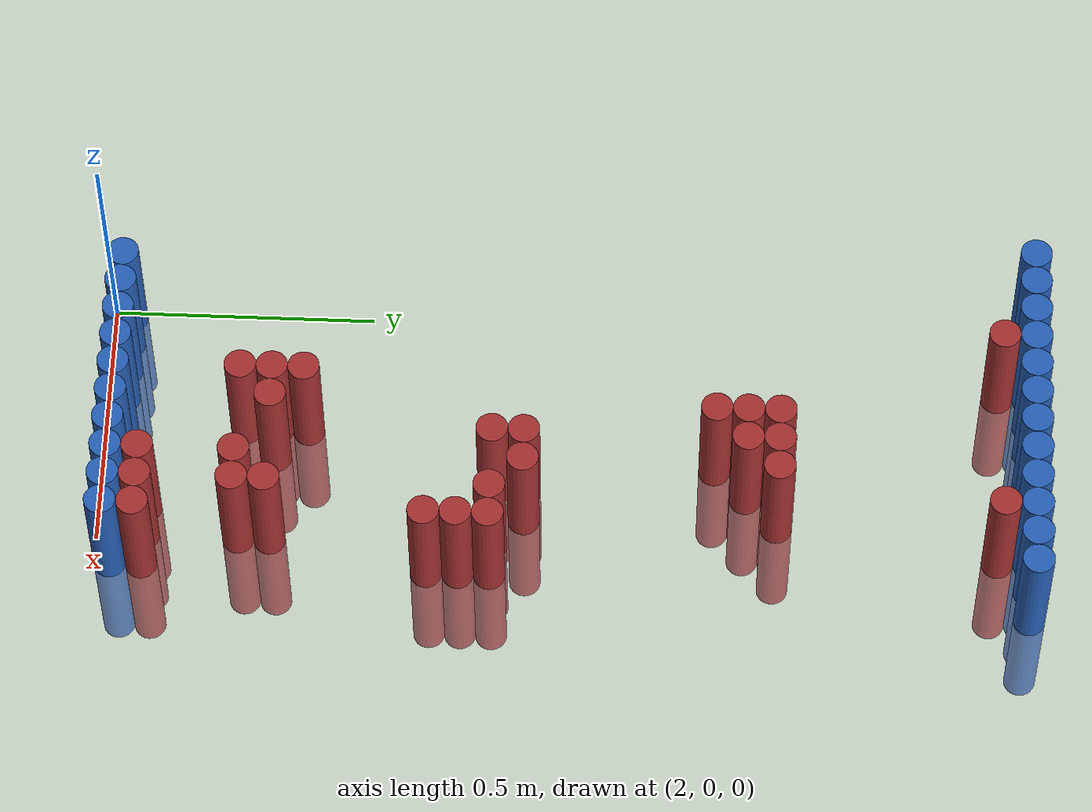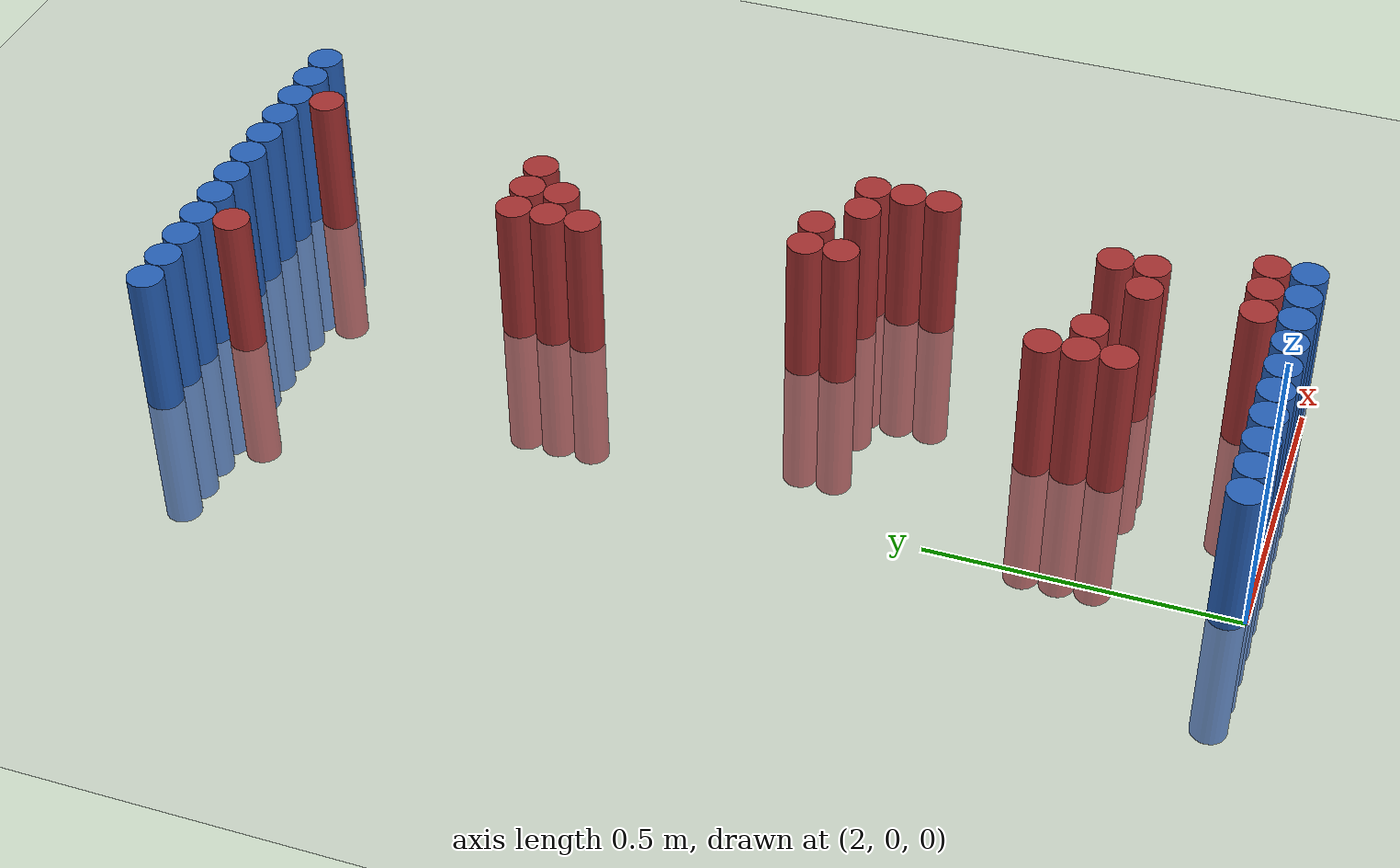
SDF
<sdf version="1.6">
 <world name="default">
  <model name="ground_plane">
   <static>1</static>
   <link name="link">
    <collision name="collision">
     <geometry><plane><normal>0 0 1</normal><size>100 100</size></plane></geometry>
     <surface><friction><ode><mu>100</mu><mu2>50</mu2></ode></friction></surface>
    </collision>
    <visual name="visual">
     <cast_shadows>0</cast_shadows>
     <geometry><plane><normal>0 0 1</normal><size>100 100</size></plane></geometry>
     <material>
      <script><uri>file://media/materials/scripts/gazebo.material</uri><name>Gazebo/Grey</name></script>
     </material>
    </visual>
   </link>
  </model>
  <model name="unit_cylinder_92">
   <static>1</static>
   <pose>1.950000 1.770000 0.000000 0.000000 0.000000 0.000000</pose>
   <link name="link">
    <inertial>
     <mass>1</mass>
     <inertia><ixx>0.145833</ixx><ixy>0</ixy><ixz>0</ixz><iyy>0.145833</iyy><iyz>0</iyz><izz>0.125</izz></inertia>
    </inertial>
    <collision name="collision">
     <geometry><cylinder><radius>0.030000</radius><length>0.5</length></cylinder></geometry>
    </collision>
    <visual name="visual">
     <geometry><cylinder><radius>0.030000</radius><length>0.5</length></cylinder></geometry>
     <material>
      <ambient>0.152000 0.379000 0.720000 1</ambient>
      <diffuse>0.152000 0.379000 0.720000 1</diffuse>
     </material>
     <material>
      <script><name>Gazebo/Grey</name><uri>file://media/materials/scripts/gazebo.material</uri></script>
     </material>
    </visual>
   </link>
  </model>
  <model name="unit_cylinder_93">
   <static>1</static>
   <pose>2.010000 0.030000 0.000000 0.000000 0.000000 0.000000</pose>
   <link name="link">
    <inertial>
     <mass>1</mass>
     <inertia><ixx>0.145833</ixx><ixy>0</ixy><ixz>0</ixz><iyy>0.145833</iyy><iyz>0</iyz><izz>0.125</izz></inertia>
    </inertial>
    <collision name="collision">
     <geometry><cylinder><radius>0.030000</radius><length>0.5</length></cylinder></geometry>
    </collision>
    <visual name="visual">
     <geometry><cylinder><radius>0.030000</radius><length>0.5</length></cylinder></geometry>
     <material>
      <ambient>0.152000 0.379000 0.720000 1</ambient>
      <diffuse>0.152000 0.379000 0.720000 1</diffuse>
     </material>
     <material>
      <script><name>Gazebo/Grey</name><uri>file://media/materials/scripts/gazebo.material</uri></script>
     </material>
    </visual>
   </link>
  </model>
  <model name="unit_cylinder_94">
   <static>1</static>
   <pose>2.010000 1.770000 0.000000 0.000000 0.000000 0.000000</pose>
   <link name="link">
    <inertial>
     <mass>1</mass>
     <inertia><ixx>0.145833</ixx><ixy>0</ixy><ixz>0</ixz><iyy>0.145833</iyy><iyz>0</iyz><izz>0.125</izz></inertia>
    </inertial>
    <collision name="collision">
     <geometry><cylinder><radius>0.030000</radius><length>0.5</length></cylinder></geometry>
    </collision>
    <visual name="visual">
     <geometry><cylinder><radius>0.030000</radius><length>0.5</length></cylinder></geometry>
     <material>
      <ambient>0.152000 0.379000 0.720000 1</ambient>
      <diffuse>0.152000 0.379000 0.720000 1</diffuse>
     </material>
     <material>
      <script><name>Gazebo/Grey</name><uri>file://media/materials/scripts/gazebo.material</uri></script>
     </material>
    </visual>
   </link>
  </model>
  <model name="unit_cylinder_95">
   <static>1</static>
   <pose>2.070000 1.770000 0.000000 0.000000 0.000000 0.000000</pose>
   <link name="link">
    <inertial>
     <mass>1</mass>
     <inertia><ixx>0.145833</ixx><ixy>0</ixy><ixz>0</ixz><iyy>0.145833</iyy><iyz>0</iyz><izz>0.125</izz></inertia>
    </inertial>
    <collision name="collision">
     <geometry><cylinder><radius>0.030000</radius><length>0.5</length></cylinder></geometry>
    </collision>
    <visual name="visual">
     <geometry><cylinder><radius>0.030000</radius><length>0.5</length></cylinder></geometry>
     <material>
      <ambient>0.152000 0.379000 0.720000 1</ambient>
      <diffuse>0.152000 0.379000 0.720000 1</diffuse>
     </material>
     <material>
      <script><name>Gazebo/Grey</name><uri>file://media/materials/scripts/gazebo.material</uri></script>
     </material>
    </visual>
   </link>
  </model>
  <model name="unit_cylinder_96">
   <static>1</static>
   <pose>2.130000 1.770000 0.000000 0.000000 0.000000 0.000000</pose>
   <link name="link">
    <inertial>
     <mass>1</mass>
     <inertia><ixx>0.145833</ixx><ixy>0</ixy><ixz>0</ixz><iyy>0.145833</iyy><iyz>0</iyz><izz>0.125</izz></inertia>
    </inertial>
    <collision name="collision">
     <geometry><cylinder><radius>0.030000</radius><length>0.5</length></cylinder></geometry>
    </collision>
    <visual name="visual">
     <geometry><cylinder><radius>0.030000</radius><length>0.5</length></cylinder></geometry>
     <material>
      <ambient>0.152000 0.379000 0.720000 1</ambient>
      <diffuse>0.152000 0.379000 0.720000 1</diffuse>
     </material>
     <material>
      <script><name>Gazebo/Grey</name><uri>file://media/materials/scripts/gazebo.material</uri></script>
     </material>
    </visual>
   </link>
  </model>
  <model name="unit_cylinder_97">
   <static>1</static>
   <pose>2.190000 1.770000 0.000000 0.000000 0.000000 0.000000</pose>
   <link name="link">
    <inertial>
     <mass>1</mass>
     <inertia><ixx>0.145833</ixx><ixy>0</ixy><ixz>0</ixz><iyy>0.145833</iyy><iyz>0</iyz><izz>0.125</izz></inertia>
    </inertial>
    <collision name="collision">
     <geometry><cylinder><radius>0.030000</radius><length>0.5</length></cylinder></geometry>
    </collision>
    <visual name="visual">
     <geometry><cylinder><radius>0.030000</radius><length>0.5</length></cylinder></geometry>
     <material>
      <ambient>0.152000 0.379000 0.720000 1</ambient>
      <diffuse>0.152000 0.379000 0.720000 1</diffuse>
     </material>
     <material>
      <script><name>Gazebo/Grey</name><uri>file://media/materials/scripts/gazebo.material</uri></script>
     </material>
    </visual>
   </link>
  </model>
  <model name="unit_cylinder_98">
   <static>1</static>
   <pose>2.250000 1.770000 0.000000 0.000000 0.000000 0.000000</pose>
   <link name="link">
    <inertial>
     <mass>1</mass>
     <inertia><ixx>0.145833</ixx><ixy>0</ixy><ixz>0</ixz><iyy>0.145833</iyy><iyz>0</iyz><izz>0.125</izz></inertia>
    </inertial>
    <collision name="collision">
     <geometry><cylinder><radius>0.030000</radius><length>0.5</length></cylinder></geometry>
    </collision>
    <visual name="visual">
     <geometry><cylinder><radius>0.030000</radius><length>0.5</length></cylinder></geometry>
     <material>
      <ambient>0.152000 0.379000 0.720000 1</ambient>
      <diffuse>0.152000 0.379000 0.720000 1</diffuse>
     </material>
     <material>
      <script><name>Gazebo/Grey</name><uri>file://media/materials/scripts/gazebo.material</uri></script>
     </material>
    </visual>
   </link>
  </model>
  <model name="unit_cylinder_99">
   <static>1</static>
   <pose>2.310000 1.770000 0.000000 0.000000 0.000000 0.000000</pose>
   <link name="link">
    <inertial>
     <mass>1</mass>
     <inertia><ixx>0.145833</ixx><ixy>0</ixy><ixz>0</ixz><iyy>0.145833</iyy><iyz>0</iyz><izz>0.125</izz></inertia>
    </inertial>
    <collision name="collision">
     <geometry><cylinder><radius>0.030000</radius><length>0.5</length></cylinder></geometry>
    </collision>
    <visual name="visual">
     <geometry><cylinder><radius>0.030000</radius><length>0.5</length></cylinder></geometry>
     <material>
      <ambient>0.152000 0.379000 0.720000 1</ambient>
      <diffuse>0.152000 0.379000 0.720000 1</diffuse>
     </material>
     <material>
      <script><name>Gazebo/Grey</name><uri>file://media/materials/scripts/gazebo.material</uri></script>
     </material>
    </visual>
   </link>
  </model>
  <model name="unit_cylinder_100">
   <static>1</static>
   <pose>2.370000 1.770000 0.000000 0.000000 0.000000 0.000000</pose>
   <link name="link">
    <inertial>
     <mass>1</mass>
     <inertia><ixx>0.145833</ixx><ixy>0</ixy><ixz>0</ixz><iyy>0.145833</iyy><iyz>0</iyz><izz>0.125</izz></inertia>
    </inertial>
    <collision name="collision">
     <geometry><cylinder><radius>0.030000</radius><length>0.5</length></cylinder></geometry>
    </collision>
    <visual name="visual">
     <geometry><cylinder><radius>0.030000</radius><length>0.5</length></cylinder></geometry>
     <material>
      <ambient>0.152000 0.379000 0.720000 1</ambient>
      <diffuse>0.152000 0.379000 0.720000 1</diffuse>
     </material>
     <material>
      <script><name>Gazebo/Grey</name><uri>file://media/materials/scripts/gazebo.material</uri></script>
     </material>
    </visual>
   </link>
  </model>
  <model name="unit_cylinder_101">
   <static>1</static>
   <pose>2.430000 1.770000 0.000000 0.000000 0.000000 0.000000</pose>
   <link name="link">
    <inertial>
     <mass>1</mass>
     <inertia><ixx>0.145833</ixx><ixy>0</ixy><ixz>0</ixz><iyy>0.145833</iyy><iyz>0</iyz><izz>0.125</izz></inertia>
    </inertial>
    <collision name="collision">
     <geometry><cylinder><radius>0.030000</radius><length>0.5</length></cylinder></geometry>
    </collision>
    <visual name="visual">
     <geometry><cylinder><radius>0.030000</radius><length>0.5</length></cylinder></geometry>
     <material>
      <ambient>0.152000 0.379000 0.720000 1</ambient>
      <diffuse>0.152000 0.379000 0.720000 1</diffuse>
     </material>
     <material>
      <script><name>Gazebo/Grey</name><uri>file://media/materials/scripts/gazebo.material</uri></script>
     </material>
    </visual>
   </link>
  </model>
  <model name="unit_cylinder_102">
   <static>1</static>
   <pose>2.490000 1.770000 0.000000 0.000000 0.000000 0.000000</pose>
   <link name="link">
    <inertial>
     <mass>1</mass>
     <inertia><ixx>0.145833</ixx><ixy>0</ixy><ixz>0</ixz><iyy>0.145833</iyy><iyz>0</iyz><izz>0.125</izz></inertia>
    </inertial>
    <collision name="collision">
     <geometry><cylinder><radius>0.030000</radius><length>0.5</length></cylinder></geometry>
    </collision>
    <visual name="visual">
     <geometry><cylinder><radius>0.030000</radius><length>0.5</length></cylinder></geometry>
     <material>
      <ambient>0.152000 0.379000 0.720000 1</ambient>
      <diffuse>0.152000 0.379000 0.720000 1</diffuse>
     </material>
     <material>
      <script><name>Gazebo/Grey</name><uri>file://media/materials/scripts/gazebo.material</uri></script>
     </material>
    </visual>
   </link>
  </model>
  <model name="unit_cylinder_103">
   <static>1</static>
   <pose>2.550000 1.770000 0.000000 0.000000 0.000000 0.000000</pose>
   <link name="link">
    <inertial>
     <mass>1</mass>
     <inertia><ixx>0.145833</ixx><ixy>0</ixy><ixz>0</ixz><iyy>0.145833</iyy><iyz>0</iyz><izz>0.125</izz></inertia>
    </inertial>
    <collision name="collision">
     <geometry><cylinder><radius>0.030000</radius><length>0.5</length></cylinder></geometry>
    </collision>
    <visual name="visual">
     <geometry><cylinder><radius>0.030000</radius><length>0.5</length></cylinder></geometry>
     <material>
      <ambient>0.152000 0.379000 0.720000 1</ambient>
      <diffuse>0.152000 0.379000 0.720000 1</diffuse>
     </material>
     <material>
      <script><name>Gazebo/Grey</name><uri>file://media/materials/scripts/gazebo.material</uri></script>
     </material>
    </visual>
   </link>
  </model>
  <model name="unit_cylinder_104">
   <static>1</static>
   <pose>2.610000 1.770000 0.000000 0.000000 0.000000 0.000000</pose>
   <link name="link">
    <inertial>
     <mass>1</mass>
     <inertia><ixx>0.145833</ixx><ixy>0</ixy><ixz>0</ixz><iyy>0.145833</iyy><iyz>0</iyz><izz>0.125</izz></inertia>
    </inertial>
    <collision name="collision">
     <geometry><cylinder><radius>0.030000</radius><length>0.5</length></cylinder></geometry>
    </collision>
    <visual name="visual">
     <geometry><cylinder><radius>0.030000</radius><length>0.5</length></cylinder></geometry>
     <material>
      <ambient>0.152000 0.379000 0.720000 1</ambient>
      <diffuse>0.152000 0.379000 0.720000 1</diffuse>
     </material>
     <material>
      <script><name>Gazebo/Grey</name><uri>file://media/materials/scripts/gazebo.material</uri></script>
     </material>
    </visual>
   </link>
  </model>
  <model name="unit_cylinder_125">
   <static>1</static>
   <pose>2.130000 1.710000 0.000000 0.000000 0.000000 0.000000</pose>
   <link name="link">
    <inertial>
     <mass>1</mass>
     <inertia><ixx>0.145833</ixx><ixy>0</ixy><ixz>0</ixz><iyy>0.145833</iyy><iyz>0</iyz><izz>0.125</izz></inertia>
    </inertial>
    <collision name="collision">
     <geometry><cylinder><radius>0.030000</radius><length>0.5</length></cylinder></geometry>
    </collision>
    <visual name="visual">
     <geometry><cylinder><radius>0.030000</radius><length>0.5</length></cylinder></geometry>
     <material>
      <ambient>0.648000 0.192000 0.192000 1</ambient>
      <diffuse>0.648000 0.192000 0.192000 1</diffuse>
     </material>
     <material>
      <script><name>Gazebo/Grey</name><uri>file://media/materials/scripts/gazebo.material</uri></script>
     </material>
    </visual>
   </link>
  </model>
  <model name="unit_cylinder_126">
   <static>1</static>
   <pose>2.490000 1.710000 0.000000 0.000000 0.000000 0.000000</pose>
   <link name="link">
    <inertial>
     <mass>1</mass>
     <inertia><ixx>0.145833</ixx><ixy>0</ixy><ixz>0</ixz><iyy>0.145833</iyy><iyz>0</iyz><izz>0.125</izz></inertia>
    </inertial>
    <collision name="collision">
     <geometry><cylinder><radius>0.030000</radius><length>0.5</length></cylinder></geometry>
    </collision>
    <visual name="visual">
     <geometry><cylinder><radius>0.030000</radius><length>0.5</length></cylinder></geometry>
     <material>
      <ambient>0.648000 0.192000 0.192000 1</ambient>
      <diffuse>0.648000 0.192000 0.192000 1</diffuse>
     </material>
     <material>
      <script><name>Gazebo/Grey</name><uri>file://media/materials/scripts/gazebo.material</uri></script>
     </material>
    </visual>
   </link>
  </model>
  <model name="unit_cylinder_148">
   <static>1</static>
   <pose>2.310000 1.290000 0.000000 0.000000 0.000000 0.000000</pose>
   <link name="link">
    <inertial>
     <mass>1</mass>
     <inertia><ixx>0.145833</ixx><ixy>0</ixy><ixz>0</ixz><iyy>0.145833</iyy><iyz>0</iyz><izz>0.125</izz></inertia>
    </inertial>
    <collision name="collision">
     <geometry><cylinder><radius>0.030000</radius><length>0.5</length></cylinder></geometry>
    </collision>
    <visual name="visual">
     <geometry><cylinder><radius>0.030000</radius><length>0.5</length></cylinder></geometry>
     <material>
      <ambient>0.648000 0.192000 0.192000 1</ambient>
      <diffuse>0.648000 0.192000 0.192000 1</diffuse>
     </material>
     <material>
      <script><name>Gazebo/Grey</name><uri>file://media/materials/scripts/gazebo.material</uri></script>
     </material>
    </visual>
   </link>
  </model>
  <model name="unit_cylinder_149">
   <static>1</static>
   <pose>2.370000 1.290000 0.000000 0.000000 0.000000 0.000000</pose>
   <link name="link">
    <inertial>
     <mass>1</mass>
     <inertia><ixx>0.145833</ixx><ixy>0</ixy><ixz>0</ixz><iyy>0.145833</iyy><iyz>0</iyz><izz>0.125</izz></inertia>
    </inertial>
    <collision name="collision">
     <geometry><cylinder><radius>0.030000</radius><length>0.5</length></cylinder></geometry>
    </collision>
    <visual name="visual">
     <geometry><cylinder><radius>0.030000</radius><length>0.5</length></cylinder></geometry>
     <material>
      <ambient>0.648000 0.192000 0.192000 1</ambient>
      <diffuse>0.648000 0.192000 0.192000 1</diffuse>
     </material>
     <material>
      <script><name>Gazebo/Grey</name><uri>file://media/materials/scripts/gazebo.material</uri></script>
     </material>
    </visual>
   </link>
  </model>
  <model name="unit_cylinder_150">
   <static>1</static>
   <pose>2.430000 1.290000 0.000000 0.000000 0.000000 0.000000</pose>
   <link name="link">
    <inertial>
     <mass>1</mass>
     <inertia><ixx>0.145833</ixx><ixy>0</ixy><ixz>0</ixz><iyy>0.145833</iyy><iyz>0</iyz><izz>0.125</izz></inertia>
    </inertial>
    <collision name="collision">
     <geometry><cylinder><radius>0.030000</radius><length>0.5</length></cylinder></geometry>
    </collision>
    <visual name="visual">
     <geometry><cylinder><radius>0.030000</radius><length>0.5</length></cylinder></geometry>
     <material>
      <ambient>0.648000 0.192000 0.192000 1</ambient>
      <diffuse>0.648000 0.192000 0.192000 1</diffuse>
     </material>
     <material>
      <script><name>Gazebo/Grey</name><uri>file://media/materials/scripts/gazebo.material</uri></script>
     </material>
    </visual>
   </link>
  </model>
  <model name="unit_cylinder_151">
   <static>1</static>
   <pose>2.310000 1.230000 0.000000 0.000000 0.000000 0.000000</pose>
   <link name="link">
    <inertial>
     <mass>1</mass>
     <inertia><ixx>0.145833</ixx><ixy>0</ixy><ixz>0</ixz><iyy>0.145833</iyy><iyz>0</iyz><izz>0.125</izz></inertia>
    </inertial>
    <collision name="collision">
     <geometry><cylinder><radius>0.030000</radius><length>0.5</length></cylinder></geometry>
    </collision>
    <visual name="visual">
     <geometry><cylinder><radius>0.030000</radius><length>0.5</length></cylinder></geometry>
     <material>
      <ambient>0.648000 0.192000 0.192000 1</ambient>
      <diffuse>0.648000 0.192000 0.192000 1</diffuse>
     </material>
     <material>
      <script><name>Gazebo/Grey</name><uri>file://media/materials/scripts/gazebo.material</uri></script>
     </material>
    </visual>
   </link>
  </model>
  <model name="unit_cylinder_152">
   <static>1</static>
   <pose>2.370000 1.230000 0.000000 0.000000 0.000000 0.000000</pose>
   <link name="link">
    <inertial>
     <mass>1</mass>
     <inertia><ixx>0.145833</ixx><ixy>0</ixy><ixz>0</ixz><iyy>0.145833</iyy><iyz>0</iyz><izz>0.125</izz></inertia>
    </inertial>
    <collision name="collision">
     <geometry><cylinder><radius>0.030000</radius><length>0.5</length></cylinder></geometry>
    </collision>
    <visual name="visual">
     <geometry><cylinder><radius>0.030000</radius><length>0.5</length></cylinder></geometry>
     <material>
      <ambient>0.648000 0.192000 0.192000 1</ambient>
      <diffuse>0.648000 0.192000 0.192000 1</diffuse>
     </material>
     <material>
      <script><name>Gazebo/Grey</name><uri>file://media/materials/scripts/gazebo.material</uri></script>
     </material>
    </visual>
   </link>
  </model>
  <model name="unit_cylinder_154">
   <static>1</static>
   <pose>2.310000 1.170000 0.000000 0.000000 0.000000 0.000000</pose>
   <link name="link">
    <inertial>
     <mass>1</mass>
     <inertia><ixx>0.145833</ixx><ixy>0</ixy><ixz>0</ixz><iyy>0.145833</iyy><iyz>0</iyz><izz>0.125</izz></inertia>
    </inertial>
    <collision name="collision">
     <geometry><cylinder><radius>0.030000</radius><length>0.5</length></cylinder></geometry>
    </collision>
    <visual name="visual">
     <geometry><cylinder><radius>0.030000</radius><length>0.5</length></cylinder></geometry>
     <material>
      <ambient>0.648000 0.192000 0.192000 1</ambient>
      <diffuse>0.648000 0.192000 0.192000 1</diffuse>
     </material>
     <material>
      <script><name>Gazebo/Grey</name><uri>file://media/materials/scripts/gazebo.material</uri></script>
     </material>
    </visual>
   </link>
  </model>
  <model name="unit_cylinder_179">
   <static>1</static>
   <pose>2.370000 0.810000 0.000000 0.000000 0.000000 0.000000</pose>
   <link name="link">
    <inertial>
     <mass>1</mass>
     <inertia><ixx>0.145833</ixx><ixy>0</ixy><ixz>0</ixz><iyy>0.145833</iyy><iyz>0</iyz><izz>0.125</izz></inertia>
    </inertial>
    <collision name="collision">
     <geometry><cylinder><radius>0.030000</radius><length>0.5</length></cylinder></geometry>
    </collision>
    <visual name="visual">
     <geometry><cylinder><radius>0.030000</radius><length>0.5</length></cylinder></geometry>
     <material>
      <ambient>0.648000 0.192000 0.192000 1</ambient>
      <diffuse>0.648000 0.192000 0.192000 1</diffuse>
     </material>
     <material>
      <script><name>Gazebo/Grey</name><uri>file://media/materials/scripts/gazebo.material</uri></script>
     </material>
    </visual>
   </link>
  </model>
  <model name="unit_cylinder_180">
   <static>1</static>
   <pose>2.430000 0.810000 0.000000 0.000000 0.000000 0.000000</pose>
   <link name="link">
    <inertial>
     <mass>1</mass>
     <inertia><ixx>0.145833</ixx><ixy>0</ixy><ixz>0</ixz><iyy>0.145833</iyy><iyz>0</iyz><izz>0.125</izz></inertia>
    </inertial>
    <collision name="collision">
     <geometry><cylinder><radius>0.030000</radius><length>0.5</length></cylinder></geometry>
    </collision>
    <visual name="visual">
     <geometry><cylinder><radius>0.030000</radius><length>0.5</length></cylinder></geometry>
     <material>
      <ambient>0.648000 0.192000 0.192000 1</ambient>
      <diffuse>0.648000 0.192000 0.192000 1</diffuse>
     </material>
     <material>
      <script><name>Gazebo/Grey</name><uri>file://media/materials/scripts/gazebo.material</uri></script>
     </material>
    </visual>
   </link>
  </model>
  <model name="unit_cylinder_181">
   <static>1</static>
   <pose>2.370000 0.750000 0.000000 0.000000 0.000000 0.000000</pose>
   <link name="link">
    <inertial>
     <mass>1</mass>
     <inertia><ixx>0.145833</ixx><ixy>0</ixy><ixz>0</ixz><iyy>0.145833</iyy><iyz>0</iyz><izz>0.125</izz></inertia>
    </inertial>
    <collision name="collision">
     <geometry><cylinder><radius>0.030000</radius><length>0.5</length></cylinder></geometry>
    </collision>
    <visual name="visual">
     <geometry><cylinder><radius>0.030000</radius><length>0.5</length></cylinder></geometry>
     <material>
      <ambient>0.648000 0.192000 0.192000 1</ambient>
      <diffuse>0.648000 0.192000 0.192000 1</diffuse>
     </material>
     <material>
      <script><name>Gazebo/Grey</name><uri>file://media/materials/scripts/gazebo.material</uri></script>
     </material>
    </visual>
   </link>
  </model>
  <model name="unit_cylinder_182">
   <static>1</static>
   <pose>2.490000 0.750000 0.000000 0.000000 0.000000 0.000000</pose>
   <link name="link">
    <inertial>
     <mass>1</mass>
     <inertia><ixx>0.145833</ixx><ixy>0</ixy><ixz>0</ixz><iyy>0.145833</iyy><iyz>0</iyz><izz>0.125</izz></inertia>
    </inertial>
    <collision name="collision">
     <geometry><cylinder><radius>0.030000</radius><length>0.5</length></cylinder></geometry>
    </collision>
    <visual name="visual">
     <geometry><cylinder><radius>0.030000</radius><length>0.5</length></cylinder></geometry>
     <material>
      <ambient>0.648000 0.192000 0.192000 1</ambient>
      <diffuse>0.648000 0.192000 0.192000 1</diffuse>
     </material>
     <material>
      <script><name>Gazebo/Grey</name><uri>file://media/materials/scripts/gazebo.material</uri></script>
     </material>
    </visual>
   </link>
  </model>
  <model name="unit_cylinder_183">
   <static>1</static>
   <pose>2.550000 0.750000 0.000000 0.000000 0.000000 0.000000</pose>
   <link name="link">
    <inertial>
     <mass>1</mass>
     <inertia><ixx>0.145833</ixx><ixy>0</ixy><ixz>0</ixz><iyy>0.145833</iyy><iyz>0</iyz><izz>0.125</izz></inertia>
    </inertial>
    <collision name="collision">
     <geometry><cylinder><radius>0.030000</radius><length>0.5</length></cylinder></geometry>
    </collision>
    <visual name="visual">
     <geometry><cylinder><radius>0.030000</radius><length>0.5</length></cylinder></geometry>
     <material>
      <ambient>0.648000 0.192000 0.192000 1</ambient>
      <diffuse>0.648000 0.192000 0.192000 1</diffuse>
     </material>
     <material>
      <script><name>Gazebo/Grey</name><uri>file://media/materials/scripts/gazebo.material</uri></script>
     </material>
    </visual>
   </link>
  </model>
  <model name="unit_cylinder_188">
   <static>1</static>
   <pose>2.550000 0.690000 0.000000 0.000000 0.000000 0.000000</pose>
   <link name="link">
    <inertial>
     <mass>1</mass>
     <inertia><ixx>0.145833</ixx><ixy>0</ixy><ixz>0</ixz><iyy>0.145833</iyy><iyz>0</iyz><izz>0.125</izz></inertia>
    </inertial>
    <collision name="collision">
     <geometry><cylinder><radius>0.030000</radius><length>0.5</length></cylinder></geometry>
    </collision>
    <visual name="visual">
     <geometry><cylinder><radius>0.030000</radius><length>0.5</length></cylinder></geometry>
     <material>
      <ambient>0.648000 0.192000 0.192000 1</ambient>
      <diffuse>0.648000 0.192000 0.192000 1</diffuse>
     </material>
     <material>
      <script><name>Gazebo/Grey</name><uri>file://media/materials/scripts/gazebo.material</uri></script>
     </material>
    </visual>
   </link>
  </model>
  <model name="unit_cylinder_195">
   <static>1</static>
   <pose>2.550000 0.630000 0.000000 0.000000 0.000000 0.000000</pose>
   <link name="link">
    <inertial>
     <mass>1</mass>
     <inertia><ixx>0.145833</ixx><ixy>0</ixy><ixz>0</ixz><iyy>0.145833</iyy><iyz>0</iyz><izz>0.125</izz></inertia>
    </inertial>
    <collision name="collision">
     <geometry><cylinder><radius>0.030000</radius><length>0.5</length></cylinder></geometry>
    </collision>
    <visual name="visual">
     <geometry><cylinder><radius>0.030000</radius><length>0.5</length></cylinder></geometry>
     <material>
      <ambient>0.648000 0.192000 0.192000 1</ambient>
      <diffuse>0.648000 0.192000 0.192000 1</diffuse>
     </material>
     <material>
      <script><name>Gazebo/Grey</name><uri>file://media/materials/scripts/gazebo.material</uri></script>
     </material>
    </visual>
   </link>
  </model>
  <model name="unit_cylinder_208">
   <static>1</static>
   <pose>2.250000 0.390000 0.000000 0.000000 0.000000 0.000000</pose>
   <link name="link">
    <inertial>
     <mass>1</mass>
     <inertia><ixx>0.145833</ixx><ixy>0</ixy><ixz>0</ixz><iyy>0.145833</iyy><iyz>0</iyz><izz>0.125</izz></inertia>
    </inertial>
    <collision name="collision">
     <geometry><cylinder><radius>0.030000</radius><length>0.5</length></cylinder></geometry>
    </collision>
    <visual name="visual">
     <geometry><cylinder><radius>0.030000</radius><length>0.5</length></cylinder></geometry>
     <material>
      <ambient>0.648000 0.192000 0.192000 1</ambient>
      <diffuse>0.648000 0.192000 0.192000 1</diffuse>
     </material>
     <material>
      <script><name>Gazebo/Grey</name><uri>file://media/materials/scripts/gazebo.material</uri></script>
     </material>
    </visual>
   </link>
  </model>
  <model name="unit_cylinder_212">
   <static>1</static>
   <pose>2.250000 0.330000 0.000000 0.000000 0.000000 0.000000</pose>
   <link name="link">
    <inertial>
     <mass>1</mass>
     <inertia><ixx>0.145833</ixx><ixy>0</ixy><ixz>0</ixz><iyy>0.145833</iyy><iyz>0</iyz><izz>0.125</izz></inertia>
    </inertial>
    <collision name="collision">
     <geometry><cylinder><radius>0.030000</radius><length>0.5</length></cylinder></geometry>
    </collision>
    <visual name="visual">
     <geometry><cylinder><radius>0.030000</radius><length>0.5</length></cylinder></geometry>
     <material>
      <ambient>0.648000 0.192000 0.192000 1</ambient>
      <diffuse>0.648000 0.192000 0.192000 1</diffuse>
     </material>
     <material>
      <script><name>Gazebo/Grey</name><uri>file://media/materials/scripts/gazebo.material</uri></script>
     </material>
    </visual>
   </link>
  </model>
  <model name="unit_cylinder_213">
   <static>1</static>
   <pose>2.310000 0.330000 0.000000 0.000000 0.000000 0.000000</pose>
   <link name="link">
    <inertial>
     <mass>1</mass>
     <inertia><ixx>0.145833</ixx><ixy>0</ixy><ixz>0</ixz><iyy>0.145833</iyy><iyz>0</iyz><izz>0.125</izz></inertia>
    </inertial>
    <collision name="collision">
     <geometry><cylinder><radius>0.030000</radius><length>0.5</length></cylinder></geometry>
    </collision>
    <visual name="visual">
     <geometry><cylinder><radius>0.030000</radius><length>0.5</length></cylinder></geometry>
     <material>
      <ambient>0.648000 0.192000 0.192000 1</ambient>
      <diffuse>0.648000 0.192000 0.192000 1</diffuse>
     </material>
     <material>
      <script><name>Gazebo/Grey</name><uri>file://media/materials/scripts/gazebo.material</uri></script>
     </material>
    </visual>
   </link>
  </model>
  <model name="unit_cylinder_214">
   <static>1</static>
   <pose>2.490000 0.330000 0.000000 0.000000 0.000000 0.000000</pose>
   <link name="link">
    <inertial>
     <mass>1</mass>
     <inertia><ixx>0.145833</ixx><ixy>0</ixy><ixz>0</ixz><iyy>0.145833</iyy><iyz>0</iyz><izz>0.125</izz></inertia>
    </inertial>
    <collision name="collision">
     <geometry><cylinder><radius>0.030000</radius><length>0.5</length></cylinder></geometry>
    </collision>
    <visual name="visual">
     <geometry><cylinder><radius>0.030000</radius><length>0.5</length></cylinder></geometry>
     <material>
      <ambient>0.648000 0.192000 0.192000 1</ambient>
      <diffuse>0.648000 0.192000 0.192000 1</diffuse>
     </material>
     <material>
      <script><name>Gazebo/Grey</name><uri>file://media/materials/scripts/gazebo.material</uri></script>
     </material>
    </visual>
   </link>
  </model>
  <model name="unit_cylinder_217">
   <static>1</static>
   <pose>2.250000 0.270000 0.000000 0.000000 0.000000 0.000000</pose>
   <link name="link">
    <inertial>
     <mass>1</mass>
     <inertia><ixx>0.145833</ixx><ixy>0</ixy><ixz>0</ixz><iyy>0.145833</iyy><iyz>0</iyz><izz>0.125</izz></inertia>
    </inertial>
    <collision name="collision">
     <geometry><cylinder><radius>0.030000</radius><length>0.5</length></cylinder></geometry>
    </collision>
    <visual name="visual">
     <geometry><cylinder><radius>0.030000</radius><length>0.5</length></cylinder></geometry>
     <material>
      <ambient>0.648000 0.192000 0.192000 1</ambient>
      <diffuse>0.648000 0.192000 0.192000 1</diffuse>
     </material>
     <material>
      <script><name>Gazebo/Grey</name><uri>file://media/materials/scripts/gazebo.material</uri></script>
     </material>
    </visual>
   </link>
  </model>
  <model name="unit_cylinder_218">
   <static>1</static>
   <pose>2.430000 0.270000 0.000000 0.000000 0.000000 0.000000</pose>
   <link name="link">
    <inertial>
     <mass>1</mass>
     <inertia><ixx>0.145833</ixx><ixy>0</ixy><ixz>0</ixz><iyy>0.145833</iyy><iyz>0</iyz><izz>0.125</izz></inertia>
    </inertial>
    <collision name="collision">
     <geometry><cylinder><radius>0.030000</radius><length>0.5</length></cylinder></geometry>
    </collision>
    <visual name="visual">
     <geometry><cylinder><radius>0.030000</radius><length>0.5</length></cylinder></geometry>
     <material>
      <ambient>0.648000 0.192000 0.192000 1</ambient>
      <diffuse>0.648000 0.192000 0.192000 1</diffuse>
     </material>
     <material>
      <script><name>Gazebo/Grey</name><uri>file://media/materials/scripts/gazebo.material</uri></script>
     </material>
    </visual>
   </link>
  </model>
  <model name="unit_cylinder_219">
   <static>1</static>
   <pose>2.490000 0.270000 0.000000 0.000000 0.000000 0.000000</pose>
   <link name="link">
    <inertial>
     <mass>1</mass>
     <inertia><ixx>0.145833</ixx><ixy>0</ixy><ixz>0</ixz><iyy>0.145833</iyy><iyz>0</iyz><izz>0.125</izz></inertia>
    </inertial>
    <collision name="collision">
     <geometry><cylinder><radius>0.030000</radius><length>0.5</length></cylinder></geometry>
    </collision>
    <visual name="visual">
     <geometry><cylinder><radius>0.030000</radius><length>0.5</length></cylinder></geometry>
     <material>
      <ambient>0.648000 0.192000 0.192000 1</ambient>
      <diffuse>0.648000 0.192000 0.192000 1</diffuse>
     </material>
     <material>
      <script><name>Gazebo/Grey</name><uri>file://media/materials/scripts/gazebo.material</uri></script>
     </material>
    </visual>
   </link>
  </model>
  <model name="unit_cylinder_236">
   <static>1</static>
   <pose>2.430000 0.090000 0.000000 0.000000 0.000000 0.000000</pose>
   <link name="link">
    <inertial>
     <mass>1</mass>
     <inertia><ixx>0.145833</ixx><ixy>0</ixy><ixz>0</ixz><iyy>0.145833</iyy><iyz>0</iyz><izz>0.125</izz></inertia>
    </inertial>
    <collision name="collision">
     <geometry><cylinder><radius>0.030000</radius><length>0.5</length></cylinder></geometry>
    </collision>
    <visual name="visual">
     <geometry><cylinder><radius>0.030000</radius><length>0.5</length></cylinder></geometry>
     <material>
      <ambient>0.648000 0.192000 0.192000 1</ambient>
      <diffuse>0.648000 0.192000 0.192000 1</diffuse>
     </material>
     <material>
      <script><name>Gazebo/Grey</name><uri>file://media/materials/scripts/gazebo.material</uri></script>
     </material>
    </visual>
   </link>
  </model>
  <model name="unit_cylinder_237">
   <static>1</static>
   <pose>2.490000 0.090000 0.000000 0.000000 0.000000 0.000000</pose>
   <link name="link">
    <inertial>
     <mass>1</mass>
     <inertia><ixx>0.145833</ixx><ixy>0</ixy><ixz>0</ixz><iyy>0.145833</iyy><iyz>0</iyz><izz>0.125</izz></inertia>
    </inertial>
    <collision name="collision">
     <geometry><cylinder><radius>0.030000</radius><length>0.5</length></cylinder></geometry>
    </collision>
    <visual name="visual">
     <geometry><cylinder><radius>0.030000</radius><length>0.5</length></cylinder></geometry>
     <material>
      <ambient>0.648000 0.192000 0.192000 1</ambient>
      <diffuse>0.648000 0.192000 0.192000 1</diffuse>
     </material>
     <material>
      <script><name>Gazebo/Grey</name><uri>file://media/materials/scripts/gazebo.material</uri></script>
     </material>
    </visual>
   </link>
  </model>
  <model name="unit_cylinder_238">
   <static>1</static>
   <pose>2.550000 0.090000 0.000000 0.000000 0.000000 0.000000</pose>
   <link name="link">
    <inertial>
     <mass>1</mass>
     <inertia><ixx>0.145833</ixx><ixy>0</ixy><ixz>0</ixz><iyy>0.145833</iyy><iyz>0</iyz><izz>0.125</izz></inertia>
    </inertial>
    <collision name="collision">
     <geometry><cylinder><radius>0.030000</radius><length>0.5</length></cylinder></geometry>
    </collision>
    <visual name="visual">
     <geometry><cylinder><radius>0.030000</radius><length>0.5</length></cylinder></geometry>
     <material>
      <ambient>0.648000 0.192000 0.192000 1</ambient>
      <diffuse>0.648000 0.192000 0.192000 1</diffuse>
     </material>
     <material>
      <script><name>Gazebo/Grey</name><uri>file://media/materials/scripts/gazebo.material</uri></script>
     </material>
    </visual>
   </link>
  </model>
  <model name="unit_cylinder_248">
   <static>1</static>
   <pose>2.070000 0.030000 0.000000 0.000000 0.000000 0.000000</pose>
   <link name="link">
    <inertial>
     <mass>1</mass>
     <inertia><ixx>0.145833</ixx><ixy>0</ixy><ixz>0</ixz><iyy>0.145833</iyy><iyz>0</iyz><izz>0.125</izz></inertia>
    </inertial>
    <collision name="collision">
     <geometry><cylinder><radius>0.030000</radius><length>0.5</length></cylinder></geometry>
    </collision>
    <visual name="visual">
     <geometry><cylinder><radius>0.030000</radius><length>0.5</length></cylinder></geometry>
     <material>
      <ambient>0.152000 0.379000 0.720000 1</ambient>
      <diffuse>0.152000 0.379000 0.720000 1</diffuse>
     </material>
     <material>
      <script><name>Gazebo/Grey</name><uri>file://media/materials/scripts/gazebo.material</uri></script>
     </material>
    </visual>
   </link>
  </model>
  <model name="unit_cylinder_249">
   <static>1</static>
   <pose>2.130000 0.030000 0.000000 0.000000 0.000000 0.000000</pose>
   <link name="link">
    <inertial>
     <mass>1</mass>
     <inertia><ixx>0.145833</ixx><ixy>0</ixy><ixz>0</ixz><iyy>0.145833</iyy><iyz>0</iyz><izz>0.125</izz></inertia>
    </inertial>
    <collision name="collision">
     <geometry><cylinder><radius>0.030000</radius><length>0.5</length></cylinder></geometry>
    </collision>
    <visual name="visual">
     <geometry><cylinder><radius>0.030000</radius><length>0.5</length></cylinder></geometry>
     <material>
      <ambient>0.152000 0.379000 0.720000 1</ambient>
      <diffuse>0.152000 0.379000 0.720000 1</diffuse>
     </material>
     <material>
      <script><name>Gazebo/Grey</name><uri>file://media/materials/scripts/gazebo.material</uri></script>
     </material>
    </visual>
   </link>
  </model>
  <model name="unit_cylinder_250">
   <static>1</static>
   <pose>2.190000 0.030000 0.000000 0.000000 0.000000 0.000000</pose>
   <link name="link">
    <inertial>
     <mass>1</mass>
     <inertia><ixx>0.145833</ixx><ixy>0</ixy><ixz>0</ixz><iyy>0.145833</iyy><iyz>0</iyz><izz>0.125</izz></inertia>
    </inertial>
    <collision name="collision">
     <geometry><cylinder><radius>0.030000</radius><length>0.5</length></cylinder></geometry>
    </collision>
    <visual name="visual">
     <geometry><cylinder><radius>0.030000</radius><length>0.5</length></cylinder></geometry>
     <material>
      <ambient>0.152000 0.379000 0.720000 1</ambient>
      <diffuse>0.152000 0.379000 0.720000 1</diffuse>
     </material>
     <material>
      <script><name>Gazebo/Grey</name><uri>file://media/materials/scripts/gazebo.material</uri></script>
     </material>
    </visual>
   </link>
  </model>
  <model name="unit_cylinder_251">
   <static>1</static>
   <pose>2.250000 0.030000 0.000000 0.000000 0.000000 0.000000</pose>
   <link name="link">
    <inertial>
     <mass>1</mass>
     <inertia><ixx>0.145833</ixx><ixy>0</ixy><ixz>0</ixz><iyy>0.145833</iyy><iyz>0</iyz><izz>0.125</izz></inertia>
    </inertial>
    <collision name="collision">
     <geometry><cylinder><radius>0.030000</radius><length>0.5</length></cylinder></geometry>
    </collision>
    <visual name="visual">
     <geometry><cylinder><radius>0.030000</radius><length>0.5</length></cylinder></geometry>
     <material>
      <ambient>0.152000 0.379000 0.720000 1</ambient>
      <diffuse>0.152000 0.379000 0.720000 1</diffuse>
     </material>
     <material>
      <script><name>Gazebo/Grey</name><uri>file://media/materials/scripts/gazebo.material</uri></script>
     </material>
    </visual>
   </link>
  </model>
  <model name="unit_cylinder_252">
   <static>1</static>
   <pose>2.310000 0.030000 0.000000 0.000000 0.000000 0.000000</pose>
   <link name="link">
    <inertial>
     <mass>1</mass>
     <inertia><ixx>0.145833</ixx><ixy>0</ixy><ixz>0</ixz><iyy>0.145833</iyy><iyz>0</iyz><izz>0.125</izz></inertia>
    </inertial>
    <collision name="collision">
     <geometry><cylinder><radius>0.030000</radius><length>0.5</length></cylinder></geometry>
    </collision>
    <visual name="visual">
     <geometry><cylinder><radius>0.030000</radius><length>0.5</length></cylinder></geometry>
     <material>
      <ambient>0.152000 0.379000 0.720000 1</ambient>
      <diffuse>0.152000 0.379000 0.720000 1</diffuse>
     </material>
     <material>
      <script><name>Gazebo/Grey</name><uri>file://media/materials/scripts/gazebo.material</uri></script>
     </material>
    </visual>
   </link>
  </model>
  <model name="unit_cylinder_253">
   <static>1</static>
   <pose>2.370000 0.030000 0.000000 0.000000 0.000000 0.000000</pose>
   <link name="link">
    <inertial>
     <mass>1</mass>
     <inertia><ixx>0.145833</ixx><ixy>0</ixy><ixz>0</ixz><iyy>0.145833</iyy><iyz>0</iyz><izz>0.125</izz></inertia>
    </inertial>
    <collision name="collision">
     <geometry><cylinder><radius>0.030000</radius><length>0.5</length></cylinder></geometry>
    </collision>
    <visual name="visual">
     <geometry><cylinder><radius>0.030000</radius><length>0.5</length></cylinder></geometry>
     <material>
      <ambient>0.152000 0.379000 0.720000 1</ambient>
      <diffuse>0.152000 0.379000 0.720000 1</diffuse>
     </material>
     <material>
      <script><name>Gazebo/Grey</name><uri>file://media/materials/scripts/gazebo.material</uri></script>
     </material>
    </visual>
   </link>
  </model>
  <model name="unit_cylinder_254">
   <static>1</static>
   <pose>2.430000 0.030000 0.000000 0.000000 0.000000 0.000000</pose>
   <link name="link">
    <inertial>
     <mass>1</mass>
     <inertia><ixx>0.145833</ixx><ixy>0</ixy><ixz>0</ixz><iyy>0.145833</iyy><iyz>0</iyz><izz>0.125</izz></inertia>
    </inertial>
    <collision name="collision">
     <geometry><cylinder><radius>0.030000</radius><length>0.5</length></cylinder></geometry>
    </collision>
    <visual name="visual">
     <geometry><cylinder><radius>0.030000</radius><length>0.5</length></cylinder></geometry>
     <material>
      <ambient>0.152000 0.379000 0.720000 1</ambient>
      <diffuse>0.152000 0.379000 0.720000 1</diffuse>
     </material>
     <material>
      <script><name>Gazebo/Grey</name><uri>file://media/materials/scripts/gazebo.material</uri></script>
     </material>
    </visual>
   </link>
  </model>
  <model name="unit_cylinder_255">
   <static>1</static>
   <pose>2.490000 0.030000 0.000000 0.000000 0.000000 0.000000</pose>
   <link name="link">
    <inertial>
     <mass>1</mass>
     <inertia><ixx>0.145833</ixx><ixy>0</ixy><ixz>0</ixz><iyy>0.145833</iyy><iyz>0</iyz><izz>0.125</izz></inertia>
    </inertial>
    <collision name="collision">
     <geometry><cylinder><radius>0.030000</radius><length>0.5</length></cylinder></geometry>
    </collision>
    <visual name="visual">
     <geometry><cylinder><radius>0.030000</radius><length>0.5</length></cylinder></geometry>
     <material>
      <ambient>0.152000 0.379000 0.720000 1</ambient>
      <diffuse>0.152000 0.379000 0.720000 1</diffuse>
     </material>
     <material>
      <script><name>Gazebo/Grey</name><uri>file://media/materials/scripts/gazebo.material</uri></script>
     </material>
    </visual>
   </link>
  </model>
  <model name="unit_cylinder_256">
   <static>1</static>
   <pose>2.550000 0.030000 0.000000 0.000000 0.000000 0.000000</pose>
   <link name="link">
    <inertial>
     <mass>1</mass>
     <inertia><ixx>0.145833</ixx><ixy>0</ixy><ixz>0</ixz><iyy>0.145833</iyy><iyz>0</iyz><izz>0.125</izz></inertia>
    </inertial>
    <collision name="collision">
     <geometry><cylinder><radius>0.030000</radius><length>0.5</length></cylinder></geometry>
    </collision>
    <visual name="visual">
     <geometry><cylinder><radius>0.030000</radius><length>0.5</length></cylinder></geometry>
     <material>
      <ambient>0.152000 0.379000 0.720000 1</ambient>
      <diffuse>0.152000 0.379000 0.720000 1</diffuse>
     </material>
     <material>
      <script><name>Gazebo/Grey</name><uri>file://media/materials/scripts/gazebo.material</uri></script>
     </material>
    </visual>
   </link>
  </model>
 </world>
</sdf>
